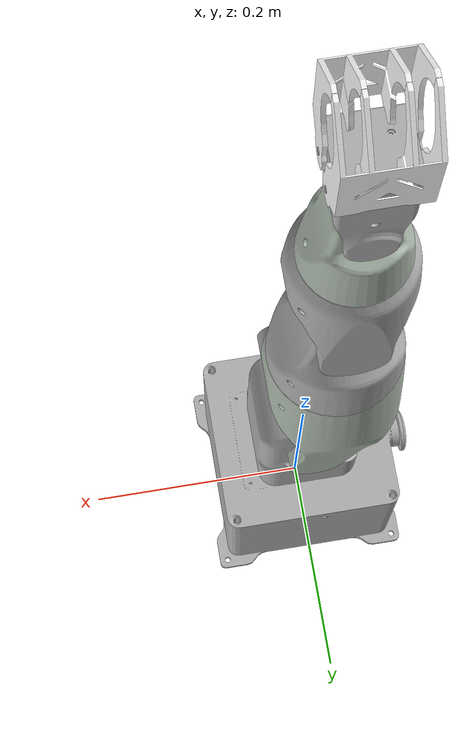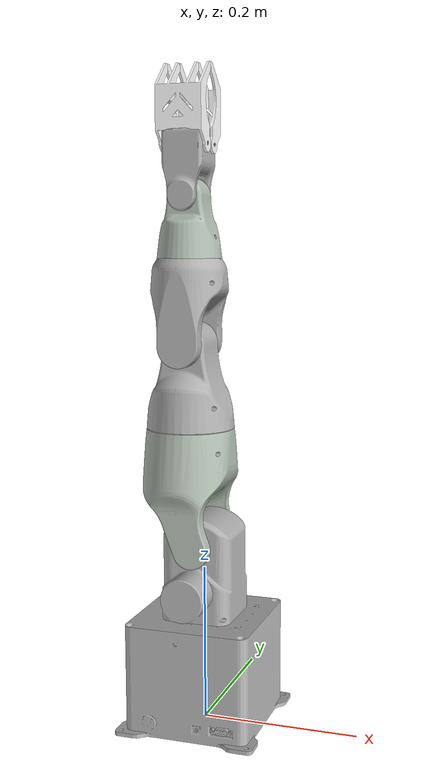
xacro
<?xml version="1.0"?>
<robot xmlns:xacro="http://www.ros.org/wiki/xacro" name="xarm">
    <xacro:arg name="initial_positions_file" default="initial_positions.yaml" />

    <!-- Import xarm urdf file -->
    <xacro:include filename="$(find xarm_description)/urdf/xarm.urdf.xacro" />

    <!-- Import control_xacro -->
    <xacro:include filename="xarm.ros2_control.xacro" />

    <xacro:xarm_ros2_control name="FakeSystem" initial_positions_file="$(arg initial_positions_file)"/>

</robot>

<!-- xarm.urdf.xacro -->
<robot xmlns:xacro="http://www.ros.org/wiki/xacro" name="xarm">

  <xacro:property name="M_PI" value="3.1415926535897931" />
  <xacro:property name="M_PI_2" value="1.570796327" />

  <!-- common gazebo -->
  <xacro:include filename="$(find xarm_description)/urdf/common.gazebo.xacro" />

  <!-- xbot_arm 桌面机械臂 -->
  <xacro:include filename="$(find xarm_description)/urdf/arm.urdf.xacro" />

  <!-- arm -->
  <xacro:xarm />

</robot>

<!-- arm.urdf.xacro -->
<robot xmlns:xacro="http://wiki.ros.org/xacro">
<xacro:include filename="$(find xarm_description)/urdf/xarm.transmission.xacro" />
<xacro:include filename="$(find xarm_description)/urdf/xarm.gazebo.xacro" />
<xacro:property name="arm_friction"       value="1.0" />
<xacro:property name="arm_damping"        value="1.0" />
<xacro:macro name="xarm" >
  <!-- link name="world" / -->

  <link name="base_link">
    <inertial>
      <origin
        xyz="-0.00594343164731706 -0.00101779633653512 0.070063016301284"
        rpy="0 0 0" />
      <mass
        value="1.38676498234547" />
      <inertia
        ixx="0.00442668602597922"
        ixy="4.0137655574151E-06"
        ixz="5.63500481216971E-05"
        iyy="0.00444008131004974"
        iyz="8.0489126094332E-06"
        izz="0.00774957715043441" />
    </inertial>
    <visual>
      <origin
        xyz="0 0 0"
        rpy="0 0 0" />
      <geometry>
        <mesh
          filename="package://xarm_description/meshes/base_link.STL" />
      </geometry>
      <material
        name="LightGrey">
        <color rgba="0.7 0.7 0.7 1.0"/>
      </material>
    </visual>
    <collision>
      <origin
        xyz="0 0 0"
        rpy="0 0 0" />
      <geometry>
        <mesh
          filename="package://xarm_description/meshes/base_link.STL" />
      </geometry>
    </collision>
  </link>
  <link name="arm_1_link">
    <inertial>
         <origin
           xyz="-0.000117276290344319 0.0122228931530341 -0.0624701032538624"
           rpy="0 0 0" />
         <mass
           value="0.139955029249829" />
         <inertia
           ixx="0.000325457683704532"
           ixy="1.35265023038897E-07"
           ixz="-4.47803005233601E-08"
           iyy="0.000236310540102376"
           iyz="1.93791571216275E-06"
           izz="0.000149250424678437" />
    </inertial>
    <visual>
      <origin
        xyz="0 0 0"
        rpy="0 0 0" />
      <geometry>
        <mesh
          filename="package://xarm_description/meshes/arm_1_link.STL" />
      </geometry>
      <material
        name="">
      <color rgba="0.7 0.7 0.7 1.0"/>
      </material>
    </visual>
    <collision>
      <origin
        xyz="0 0 0"
        rpy="0 0 0" />
      <geometry>
        <mesh
          filename="package://xarm_description/meshes/arm_1_link.STL" />
      </geometry>
    </collision>
  </link>

  <joint name="arm_1_joint" type="revolute">
    <origin
      xyz="0 0 0.14"
      rpy="3.1416 0 0" />
    <parent
      link="base_link" />
    <child
      link="arm_1_link" />
    <axis
      xyz="0 0 1" />
    <limit
        lower="-2.094"
        upper="2.094"
        effort="100"
        velocity="0.35" />
    <dynamics friction="${arm_friction}" damping="${arm_damping}"/>
  </joint>

  <link name="arm_2_link">
    <inertial>
      <origin
        xyz="-0.0174680236422027 0.0906428723777263 -3.29773055841057E-07"
        rpy="0 0 0" />
      <mass
        value="0.169587438537964" />
      <inertia
        ixx="0.000621052722745594"
        ixy="3.1093806499262E-05"
        ixz="3.58966997593046E-09"
        iyy="0.000313103181930873"
        iyz="-1.89887310785702E-09"
        izz="0.000405564215148294" />
    </inertial>
    <visual>
      <origin
        xyz="0 0 0"
        rpy="0 0 0" />
      <geometry>
        <mesh
          filename="package://xarm_description/meshes/arm_2_link.STL" />
      </geometry>
      <material
        name="">
        <color rgba="0.7 0.75 0.7 1.0"/>
      </material>
    </visual>
    <collision>
      <origin
        xyz="0 0 0"
        rpy="0 0 0" />
      <geometry>
        <mesh
          filename="package://xarm_description/meshes/arm_2_link.STL" />
      </geometry>
    </collision>
  </link>

  <joint name="arm_2_joint" type="revolute">
    <origin
      xyz="0 0 -0.095"
      rpy="-1.5708 0 0" />
    <parent
      link="arm_1_link" />
    <child
      link="arm_2_link" />
    <axis
      xyz="0 0 1" />
    <limit
        lower="-2.094"
        upper="${M_PI_2}"
        effort="100"
        velocity="0.35" />
    <dynamics friction="${arm_friction}" damping="${arm_damping}"/>
  </joint>

  <link name="arm_3_link">
    <inertial>
      <origin
        xyz="-0.000485421157864062 6.83606345788855E-05 -0.0518192203685102"
        rpy="0 0 0" />
      <mass
        value="0.113439004135591" />
      <inertia
        ixx="0.000235493816702144"
        ixy="1.90688230079504E-09"
        ixz="8.38803636808141E-07"
        iyy="0.00016178376053715"
        iyz="7.21496828022609E-08"
        izz="0.000115808035506604" />
    </inertial>
    <visual>
      <origin
        xyz="0 0 0"
        rpy="0 0 0" />
      <geometry>
        <mesh
          filename="package://xarm_description/meshes/arm_3_link.STL" />
      </geometry>
      <material
        name="">
      <color rgba="0.7 0.7 0.7 1.0"/>
      </material>
    </visual>
    <collision>
      <origin
        xyz="0 0 0"
        rpy="0 0 0" />
      <geometry>
        <mesh
          filename="package://xarm_description/meshes/arm_3_link.STL" />
      </geometry>
    </collision>
  </link>

  <joint name="arm_3_joint" type="revolute">
    <origin
      xyz="-0.018 0.145 0"
      rpy="1.5708 0 0" />
    <parent
      link="arm_2_link" />
    <child
      link="arm_3_link" />
    <axis
      xyz="0 0 1" />
    <limit lower="-2.793" upper="2.793" effort="100" velocity="0.35"/>
    <dynamics friction="${arm_friction}" damping="${arm_damping}"/>
  </joint>

  <link name="arm_4_link">
    <inertial>
      <origin
        xyz="-0.000523676254705792 0.0548426547509552 -2.32870051976362E-06"
        rpy="0 0 0" />
      <mass
        value="0.0923387760232059" />
      <inertia
        ixx="0.000210731589973129"
        ixy="3.75072823663759E-08"
        ixz="-1.24864320496203E-09"
        iyy="0.000113562778686391"
        iyz="2.14300015333684E-09"
        izz="0.000125255151693492" />
    </inertial>
    <visual>
      <origin
        xyz="0 0 0"
        rpy="0 0 0" />
      <geometry>
        <mesh
          filename="package://xarm_description/meshes/arm_4_link.STL" />
      </geometry>
      <material
        name="">
        <color rgba="0.7 0.7 0.7 1.0"/>
      </material>
    </visual>
    <collision>
      <origin
        xyz="0 0 0"
        rpy="0 0 0" />
      <geometry>
        <mesh
          filename="package://xarm_description/meshes/arm_4_link.STL" />
      </geometry>
    </collision>
  </link>

  <joint name="arm_4_joint" type="revolute">
    <origin
      xyz="0 0 -0.105"
      rpy="-1.5708 0 0" />
    <parent
      link="arm_3_link" />
    <child
      link="arm_4_link" />
    <axis
      xyz="0 0 1" />
    <limit lower="-1.92" upper="1.92" effort="100" velocity="0.35"/>
    <dynamics friction="${arm_friction}" damping="${arm_damping}"/>
  </joint>

  <link name="arm_5_link">
    <inertial>
      <origin
        xyz="-0.000318440471593399 -4.33257243015121E-09 -0.0421503668391696"
        rpy="0 0 0" />
      <mass
        value="0.0467464068633803" />
      <inertia
        ixx="5.04548630748624E-05"
        ixy="3.58124086862273E-11"
        ixz="-3.05691633144458E-07"
        iyy="3.77221825095438E-05"
        iyz="3.37480290018196E-12"
        izz="2.16144252369209E-05" />
    </inertial>
    <visual>
      <origin
        xyz="0 0 0"
        rpy="0 0 0" />
      <geometry>
        <mesh
          filename="package://xarm_description/meshes/arm_5_link.STL" />
      </geometry>
      <material
        name="">
      <color rgba="0.7 0.75 0.7 1.0"/>
      </material>
    </visual>
    <collision>
      <origin
        xyz="0 0 0"
        rpy="0 0 0" />
      <geometry>
        <mesh
          filename="package://xarm_description/meshes/arm_5_link.STL" />
      </geometry>
      <material
        name="">
      <color rgba="0.7 0.75 0.7 1.0"/>
      </material>
    </collision>
  </link>

  <joint name="arm_5_joint" type="revolute">
    <origin xyz="0 0.105 0" rpy="1.5708 0 0"/>
    <parent
      link="arm_4_link" />
    <child
      link="arm_5_link" />
    <axis
      xyz="0 0 1" />
    <limit lower="-2.793" upper="2.793" effort="100" velocity="0.35"/>
    <dynamics friction="${arm_friction}" damping="${arm_damping}"/>
  </joint>

  <link name="arm_6_link">
    <inertial>
      <origin
        xyz="0.00023077781229322 0.0477776544969339 -0.000274578550932736"
        rpy="0 0 0" />
      <mass
        value="0.0663534128705839" />
      <inertia
        ixx="4.46094691893757E-05"
        ixy="-1.67487010399996E-07"
        ixz="-5.11806394396779E-07"
        iyy="3.14288652751225E-05"
        iyz="-1.63804853996163E-09"
        izz="5.02053835003699E-05" />
    </inertial>
    <visual>
      <origin
        xyz="0 0 0"
        rpy="0 0 0" />
      <geometry>
        <mesh
          filename="package://xarm_description/meshes/arm_6_link.STL" />
      </geometry>
      <material
        name="">
        <color rgba="0.7 0.7 0.7 1.0"/>
      </material>
    </visual>
    <collision>
      <origin
        xyz="0 0 0"
        rpy="0 0 0" />
      <geometry>
        <mesh
          filename="package://xarm_description/meshes/arm_6_link.STL" />
      </geometry>
    </collision>
  </link>

  <joint name="arm_6_joint" type="revolute">
    <origin xyz="0 -0.0002 -0.075" rpy="-1.5708 0 0"/>
    <parent
      link="arm_5_link" />
    <child
      link="arm_6_link" />
    <axis
      xyz="0 0 1" />
    <limit lower="-1.57" upper="1.57" effort="100" velocity="0.35"/>
    <dynamics friction="${arm_friction}" damping="${arm_damping}"/>
  </joint>
  <link
    name="gripper_1_link">
    <inertial>
      <origin
        xyz="0.0428524050252714 0.0102173668833365 1.53174098056555E-05"
        rpy="0 0 0" />
      <mass
        value="0.0229460702572688" />
      <inertia
        ixx="1.29555143093886E-05"
        ixy="5.68898432881771E-07"
        ixz="1.65057295666631E-07"
        iyy="2.6397024313168E-05"
        iyz="3.9571735991224E-08"
        izz="1.7220072843041E-05" />
    </inertial>
    <visual>
      <origin
        xyz="0 0 0"
        rpy="0 0 0" />
      <geometry>
        <mesh
          filename="package://xarm_description/meshes/gripper_1_link.STL" />
      </geometry>
      <material
        name="">
        <color
          rgba="1 1 1 1" />
      </material>
    </visual>
    <collision>
      <origin
        xyz="0 0 0"
        rpy="0 0 0" />
      <geometry>
        <mesh
          filename="package://xarm_description/meshes/gripper_1_link.STL" />
      </geometry>
    </collision>
  </link>
  <joint
    name="gripper_1_joint"
    type="revolute">
    <origin xyz="-0.0001 0.06175 0.0115" rpy="1.5708 0 1.5708"/>
    <parent
      link="arm_6_link" />
    <child
      link="gripper_1_link" />
    <axis
      xyz="0 0 1" />
    <limit
      lower="0"
      upper="0.698"
      effort="100"
      velocity="0.35" />
    <dynamics friction="${arm_friction}" damping="${arm_damping}"/>
  </joint>
  <link
    name="gripper_2_link">
    <inertial>
      <origin
        xyz="0.0428304976382079 0.0102055784464402 9.00813000661443E-07"
        rpy="0 0 0" />
      <mass
        value="0.0229585233092397" />
      <inertia
        ixx="1.30784892266813E-05"
        ixy="5.08906298757747E-07"
        ixz="2.22019726582854E-12"
        iyy="2.67601282938736E-05"
        iyz="-9.03490236226897E-12"
        izz="1.74955869845825E-05" />
    </inertial>
    <visual>
      <origin
        xyz="0 0 0"
        rpy="0 0 0" />
      <geometry>
        <mesh
          filename="package://xarm_description/meshes/gripper_2_link.STL" />
      </geometry>
      <material
        name="">
        <color
          rgba="1 1 1 1" />
      </material>
    </visual>
    <collision>
      <origin
        xyz="0 0 0"
        rpy="0 0 0" />
      <geometry>
        <mesh
          filename="package://xarm_description/meshes/gripper_2_link.STL" />
      </geometry>
    </collision>
  </link>
  <joint
    name="gripper_2_joint"
    type="revolute">
    <origin xyz="-0.0001 0.06175 -0.012" rpy="-1.5708 0 1.5708"/>
    <parent
      link="arm_6_link" />
    <child
      link="gripper_2_link" />
    <axis
      xyz="0 0 1" />
    <limit
      lower="0"
      upper="0.698"
      effort="100"
      velocity="0.35" />
    <dynamics friction="${arm_friction}" damping="${arm_damping}"/>
    <mimic joint="gripper_1_joint" >
      <multiplier>1</multiplier>
    </mimic>
  </joint>

  <link
    name="gripper_centor_link">
  </link>

  <joint
    name="gripper_centor_joint"
    type="fixed">
   <origin xyz="-0.000 0.125 0" rpy="-1.5708 0 1.5708"/>
    <parent
      link="arm_6_link" />
    <child
      link="gripper_centor_link" />
    <axis
      xyz="0 0 0" />
  </joint>
  <xacro:arm_simple_transmission name="arm" number="1" reduction="1.0" offset_value="0.0"/>
  <xacro:arm_simple_transmission name="arm" number="2" reduction="1.0" offset_value="0.0"/>
  <xacro:arm_simple_transmission name="arm" number="3" reduction="1.0" offset_value="0.0"/>
  <xacro:arm_simple_transmission name="arm" number="4" reduction="1.0" offset_value="0.0"/>
  <xacro:arm_simple_transmission name="arm" number="5" reduction="1.0" offset_value="0.0"/>
  <xacro:arm_simple_transmission name="arm" number="6" reduction="1.0" offset_value="0.0"/>
  <xacro:arm_simple_transmission name="gripper" number="1" reduction="1.0" offset_value="0.0"/>
  <xacro:mimic_joint_plugin_gazebo name_prefix="gripper_2_joint"
  parent_joint="gripper_1_joint" mimic_joint="gripper_2_joint"
  has_pid="false" multiplier="1.0" max_effort="100.0" />

  <xacro:arm_gazebo name="arm" number="1"/>
  <xacro:arm_gazebo name="arm" number="2"/>
  <xacro:arm_gazebo name="arm" number="3"/>
  <xacro:arm_gazebo name="arm" number="4"/>
  <xacro:arm_gazebo name="arm" number="5"/>
  <xacro:arm_gazebo name="arm" number="6"/>
  <xacro:arm_gazebo name="gripper" number="1"/>
  <xacro:arm_gazebo name="gripper" number="2"/>

  </xacro:macro>
</robot>
